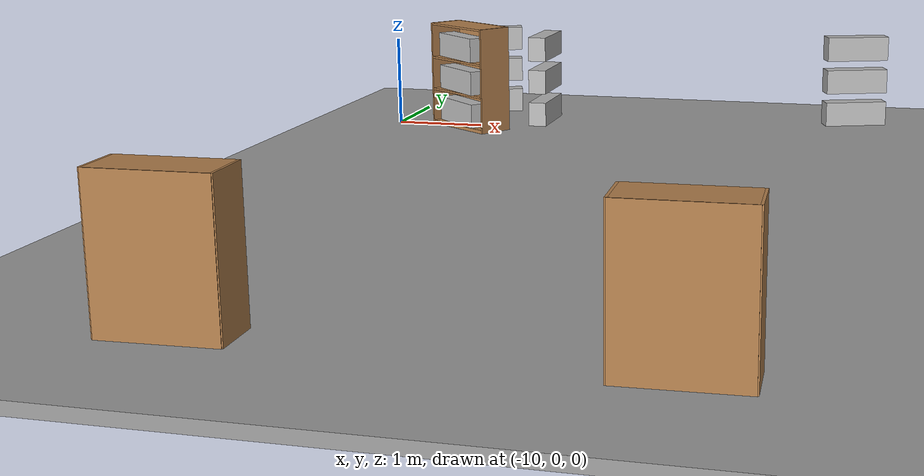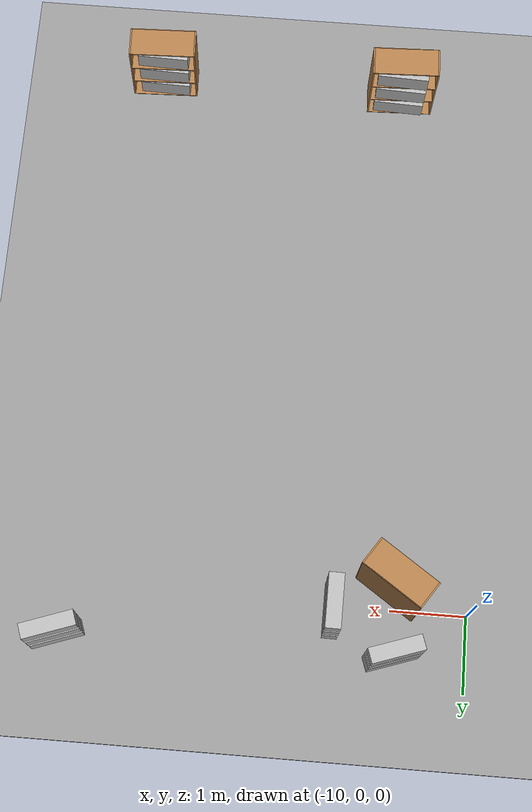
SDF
<sdf version="1.7">
 <world name="default">
  <model name="ground_plane">
   <static>1</static>
   <link name="link">
    <collision name="collision">
     <geometry><plane><normal>0 0 1</normal><size>100 100</size></plane></geometry>
     <surface><friction><ode><mu>100</mu><mu2>50</mu2></ode></friction></surface>
    </collision>
    <visual name="visual">
     <cast_shadows>0</cast_shadows>
     <geometry><plane><normal>0 0 1</normal><size>100 100</size></plane></geometry>
     <material>
      <script><uri>file://media/materials/scripts/gazebo.material</uri><name>Gazebo/Grey</name></script>
     </material>
    </visual>
   </link>
  </model>
  <model name="ground_plane_1">
   <static>1</static>
   <link name="link">
    <collision name="collision">
     <geometry><plane><normal>0 0 1</normal><size>100 100</size></plane></geometry>
     <surface>
      <contact><collide_bitmask>65535</collide_bitmask></contact>
      <friction><ode><mu>100</mu><mu2>50</mu2></ode></friction>
     </surface>
    </collision>
    <visual name="visual">
     <cast_shadows>0</cast_shadows>
     <geometry><plane><normal>0 0 1</normal><size>100 100</size></plane></geometry>
     <material>
      <script><uri>file://media/materials/scripts/gazebo.material</uri><name>Gazebo/Grey</name></script>
     </material>
    </visual>
   </link>
   <pose>-14.0073 -2.16514 0 0 -0 0</pose>
  </model>
  <model name="bookshelf_0_clone_0">
   <static>1</static>
   <link name="link">
    <inertial><mass>1</mass></inertial>
    <collision name="back">
     <pose>0 0.005 0.6 0 -0 0</pose>
     <geometry><box><size>0.9 0.01 1.2</size></box></geometry>
    </collision>
    <visual name="visual1">
     <pose>0 0.005 0.6 0 -0 0</pose>
     <geometry><box><size>0.9 0.01 1.2</size></box></geometry>
     <material>
      <script><uri>file://media/materials/scripts/gazebo.material</uri><name>Gazebo/Wood</name></script>
     </material>
    </visual>
    <collision name="left_side">
     <pose>0.45 -0.195 0.6 0 -0 0</pose>
     <geometry><box><size>0.02 0.4 1.2</size></box></geometry>
    </collision>
    <visual name="visual2">
     <pose>0.45 -0.195 0.6 0 -0 0</pose>
     <geometry><box><size>0.02 0.4 1.2</size></box></geometry>
     <material>
      <script><uri>file://media/materials/scripts/gazebo.material</uri><name>Gazebo/Wood</name></script>
     </material>
    </visual>
    <collision name="right_side">
     <pose>-0.45 -0.195 0.6 0 -0 0</pose>
     <geometry><box><size>0.02 0.4 1.2</size></box></geometry>
    </collision>
    <visual name="visual3">
     <pose>-0.45 -0.195 0.6 0 -0 0</pose>
     <geometry><box><size>0.02 0.4 1.2</size></box></geometry>
     <material>
      <script><uri>file://media/materials/scripts/gazebo.material</uri><name>Gazebo/Wood</name></script>
     </material>
    </visual>
    <collision name="bottom">
     <pose>0 -0.195 0.03 0 -0 0</pose>
     <geometry><box><size>0.88 0.4 0.06</size></box></geometry>
    </collision>
    <visual name="visual4">
     <pose>0 -0.195 0.03 0 -0 0</pose>
     <geometry><box><size>0.88 0.4 0.06</size></box></geometry>
     <material>
      <script><uri>file://media/materials/scripts/gazebo.material</uri><name>Gazebo/Wood</name></script>
     </material>
    </visual>
    <collision name="top">
     <pose>0 -0.195 1.19 0 -0 0</pose>
     <geometry><box><size>0.88 0.4 0.02</size></box></geometry>
    </collision>
    <visual name="visual5">
     <pose>0 -0.195 1.19 0 -0 0</pose>
     <geometry><box><size>0.88 0.4 0.02</size></box></geometry>
     <material>
      <script><uri>file://media/materials/scripts/gazebo.material</uri><name>Gazebo/Wood</name></script>
     </material>
    </visual>
    <collision name="low_shelf">
     <pose>0 -0.195 0.43 0 -0 0</pose>
     <geometry><box><size>0.88 0.4 0.02</size></box></geometry>
    </collision>
    <visual name="visual6">
     <pose>0 -0.195 0.43 0 -0 0</pose>
     <geometry><box><size>0.88 0.4 0.02</size></box></geometry>
     <material>
      <script><uri>file://media/materials/scripts/gazebo.material</uri><name>Gazebo/Wood</name></script>
     </material>
    </visual>
    <collision name="high_shelf">
     <pose>0 -0.195 0.8 0 -0 0</pose>
     <geometry><box><size>0.88 0.4 0.02</size></box></geometry>
    </collision>
    <visual name="visual7">
     <pose>0 -0.195 0.8 0 -0 0</pose>
     <geometry><box><size>0.88 0.4 0.02</size></box></geometry>
     <material>
      <script><uri>file://media/materials/scripts/gazebo.material</uri><name>Gazebo/Wood</name></script>
     </material>
    </visual>
   </link>
   <pose>-8.75541 -7.62626 0 0 0 -3.10983</pose>
  </model>
  <model name="bookshelf_0_clone_0_clone">
   <static>1</static>
   <link name="link">
    <inertial><mass>1</mass></inertial>
    <collision name="back">
     <pose>0 0.005 0.6 0 -0 0</pose>
     <geometry><box><size>0.9 0.01 1.2</size></box></geometry>
    </collision>
    <visual name="visual1">
     <pose>0 0.005 0.6 0 -0 0</pose>
     <geometry><box><size>0.9 0.01 1.2</size></box></geometry>
     <material>
      <script><uri>file://media/materials/scripts/gazebo.material</uri><name>Gazebo/Wood</name></script>
     </material>
    </visual>
    <collision name="left_side">
     <pose>0.45 -0.195 0.6 0 -0 0</pose>
     <geometry><box><size>0.02 0.4 1.2</size></box></geometry>
    </collision>
    <visual name="visual2">
     <pose>0.45 -0.195 0.6 0 -0 0</pose>
     <geometry><box><size>0.02 0.4 1.2</size></box></geometry>
     <material>
      <script><uri>file://media/materials/scripts/gazebo.material</uri><name>Gazebo/Wood</name></script>
     </material>
    </visual>
    <collision name="right_side">
     <pose>-0.45 -0.195 0.6 0 -0 0</pose>
     <geometry><box><size>0.02 0.4 1.2</size></box></geometry>
    </collision>
    <visual name="visual3">
     <pose>-0.45 -0.195 0.6 0 -0 0</pose>
     <geometry><box><size>0.02 0.4 1.2</size></box></geometry>
     <material>
      <script><uri>file://media/materials/scripts/gazebo.material</uri><name>Gazebo/Wood</name></script>
     </material>
    </visual>
    <collision name="bottom">
     <pose>0 -0.195 0.03 0 -0 0</pose>
     <geometry><box><size>0.88 0.4 0.06</size></box></geometry>
    </collision>
    <visual name="visual4">
     <pose>0 -0.195 0.03 0 -0 0</pose>
     <geometry><box><size>0.88 0.4 0.06</size></box></geometry>
     <material>
      <script><uri>file://media/materials/scripts/gazebo.material</uri><name>Gazebo/Wood</name></script>
     </material>
    </visual>
    <collision name="top">
     <pose>0 -0.195 1.19 0 -0 0</pose>
     <geometry><box><size>0.88 0.4 0.02</size></box></geometry>
    </collision>
    <visual name="visual5">
     <pose>0 -0.195 1.19 0 -0 0</pose>
     <geometry><box><size>0.88 0.4 0.02</size></box></geometry>
     <material>
      <script><uri>file://media/materials/scripts/gazebo.material</uri><name>Gazebo/Wood</name></script>
     </material>
    </visual>
    <collision name="low_shelf">
     <pose>0 -0.195 0.43 0 -0 0</pose>
     <geometry><box><size>0.88 0.4 0.02</size></box></geometry>
    </collision>
    <visual name="visual6">
     <pose>0 -0.195 0.43 0 -0 0</pose>
     <geometry><box><size>0.88 0.4 0.02</size></box></geometry>
     <material>
      <script><uri>file://media/materials/scripts/gazebo.material</uri><name>Gazebo/Wood</name></script>
     </material>
    </visual>
    <collision name="high_shelf">
     <pose>0 -0.195 0.8 0 -0 0</pose>
     <geometry><box><size>0.88 0.4 0.02</size></box></geometry>
    </collision>
    <visual name="visual7">
     <pose>0 -0.195 0.8 0 -0 0</pose>
     <geometry><box><size>0.88 0.4 0.02</size></box></geometry>
     <material>
      <script><uri>file://media/materials/scripts/gazebo.material</uri><name>Gazebo/Wood</name></script>
     </material>
    </visual>
   </link>
   <pose>-5.34307 -7.65405 0 0 0 -3.10983</pose>
  </model>
  <model name="bookshelf_clone_clone_clone_1_clone_0_clone_1">
   <static>1</static>
   <link name="link">
    <inertial><mass>1</mass></inertial>
    <collision name="back">
     <pose>0 0.005 0.6 0 -0 0</pose>
     <geometry><box><size>0.9 0.01 1.2</size></box></geometry>
    </collision>
    <visual name="visual1">
     <pose>0 0.005 0.6 0 -0 0</pose>
     <geometry><box><size>0.9 0.01 1.2</size></box></geometry>
     <material>
      <script><uri>file://media/materials/scripts/gazebo.material</uri><name>Gazebo/Wood</name></script>
     </material>
    </visual>
    <collision name="left_side">
     <pose>0.45 -0.195 0.6 0 -0 0</pose>
     <geometry><box><size>0.02 0.4 1.2</size></box></geometry>
    </collision>
    <visual name="visual2">
     <pose>0.45 -0.195 0.6 0 -0 0</pose>
     <geometry><box><size>0.02 0.4 1.2</size></box></geometry>
     <material>
      <script><uri>file://media/materials/scripts/gazebo.material</uri><name>Gazebo/Wood</name></script>
     </material>
    </visual>
    <collision name="right_side">
     <pose>-0.45 -0.195 0.6 0 -0 0</pose>
     <geometry><box><size>0.02 0.4 1.2</size></box></geometry>
    </collision>
    <visual name="visual3">
     <pose>-0.45 -0.195 0.6 0 -0 0</pose>
     <geometry><box><size>0.02 0.4 1.2</size></box></geometry>
     <material>
      <script><uri>file://media/materials/scripts/gazebo.material</uri><name>Gazebo/Wood</name></script>
     </material>
    </visual>
    <collision name="bottom">
     <pose>0 -0.195 0.03 0 -0 0</pose>
     <geometry><box><size>0.88 0.4 0.06</size></box></geometry>
    </collision>
    <visual name="visual4">
     <pose>0 -0.195 0.03 0 -0 0</pose>
     <geometry><box><size>0.88 0.4 0.06</size></box></geometry>
     <material>
      <script><uri>file://media/materials/scripts/gazebo.material</uri><name>Gazebo/Wood</name></script>
     </material>
    </visual>
    <collision name="top">
     <pose>0 -0.195 1.19 0 -0 0</pose>
     <geometry><box><size>0.88 0.4 0.02</size></box></geometry>
    </collision>
    <visual name="visual5">
     <pose>0 -0.195 1.19 0 -0 0</pose>
     <geometry><box><size>0.88 0.4 0.02</size></box></geometry>
     <material>
      <script><uri>file://media/materials/scripts/gazebo.material</uri><name>Gazebo/Wood</name></script>
     </material>
    </visual>
    <collision name="low_shelf">
     <pose>0 -0.195 0.43 0 -0 0</pose>
     <geometry><box><size>0.88 0.4 0.02</size></box></geometry>
    </collision>
    <visual name="visual6">
     <pose>0 -0.195 0.43 0 -0 0</pose>
     <geometry><box><size>0.88 0.4 0.02</size></box></geometry>
     <material>
      <script><uri>file://media/materials/scripts/gazebo.material</uri><name>Gazebo/Wood</name></script>
     </material>
    </visual>
    <collision name="high_shelf">
     <pose>0 -0.195 0.8 0 -0 0</pose>
     <geometry><box><size>0.88 0.4 0.02</size></box></geometry>
    </collision>
    <visual name="visual7">
     <pose>0 -0.195 0.8 0 -0 0</pose>
     <geometry><box><size>0.88 0.4 0.02</size></box></geometry>
     <material>
      <script><uri>file://media/materials/scripts/gazebo.material</uri><name>Gazebo/Wood</name></script>
     </material>
    </visual>
   </link>
   <pose>-8.91093 -0.143227 0.029212 0 0 -0.598378</pose>
  </model>
  <model name="book1.xacro_clone_9">
   <link name="base_footprint">
    <inertial>
     <pose>1 1 1.5 0 -0 0</pose>
     <mass>6</mass>
     <inertia><ixx>0.7503</ixx><ixy>0</ixy><ixz>0</ixz><iyy>0.7503</iyy><iyz>0</iyz><izz>0.003</izz></inertia>
    </inertial>
    <collision name="base_footprint_fixed_joint_lump__base_link_collision">
     <pose>1 1 1 0 -0 0</pose>
     <geometry><box><size>0.7 0.2 0.27</size></box></geometry>
    </collision>
    <collision name="base_footprint_fixed_joint_lump__book_link_2_collision_1">
     <pose>1 1 1.375 0 -0 0</pose>
     <geometry><box><size>0.7 0.2 0.27</size></box></geometry>
    </collision>
    <collision name="base_footprint_fixed_joint_lump__book_link_3_collision_2">
     <pose>1 1 1.75 0 -0 0</pose>
     <geometry><box><size>0.7 0.2 0.27</size></box></geometry>
    </collision>
    <visual name="base_footprint_fixed_joint_lump__base_link_visual">
     <pose>1 1 1 0 -0 0</pose>
     <geometry><box><size>0.7 0.2 0.27</size></box></geometry>
    </visual>
    <visual name="base_footprint_fixed_joint_lump__book_link_2_visual_1">
     <pose>1 1 1.375 0 -0 0</pose>
     <geometry><box><size>0.7 0.2 0.27</size></box></geometry>
    </visual>
    <visual name="base_footprint_fixed_joint_lump__book_link_3_visual_2">
     <pose>1 1 1.75 0 -0 0</pose>
     <geometry><box><size>0.7 0.2 0.27</size></box></geometry>
    </visual>
   </link>
   <frame name="book_joint_2" attached_to="base_link"><pose>0 0 0.375 0 -0 0</pose></frame>
   <frame name="book_link_2" attached_to="book_joint_2"/>
   <frame name="book_joint_3" attached_to="base_link"><pose>0 0 0.75 0 -0 0</pose></frame>
   <frame name="book_link_3" attached_to="book_joint_3"/>
   <frame name="base_joint" attached_to="base_footprint"><pose>1 1 1 0 -0 0</pose></frame>
   <frame name="base_link" attached_to="base_joint"/>
   <pose>-9.7861 -8.28662 -0.800018 0 -1.4e-05 -0.042703</pose>
  </model>
  <model name="book1.xacro_clone_10">
   <link name="base_footprint">
    <inertial>
     <pose>1 1 1.5 0 -0 0</pose>
     <mass>6</mass>
     <inertia><ixx>0.7503</ixx><ixy>0</ixy><ixz>0</ixz><iyy>0.7503</iyy><iyz>0</iyz><izz>0.003</izz></inertia>
    </inertial>
    <collision name="base_footprint_fixed_joint_lump__base_link_collision">
     <pose>1 1 1 0 -0 0</pose>
     <geometry><box><size>0.7 0.2 0.27</size></box></geometry>
    </collision>
    <collision name="base_footprint_fixed_joint_lump__book_link_2_collision_1">
     <pose>1 1 1.375 0 -0 0</pose>
     <geometry><box><size>0.7 0.2 0.27</size></box></geometry>
    </collision>
    <collision name="base_footprint_fixed_joint_lump__book_link_3_collision_2">
     <pose>1 1 1.75 0 -0 0</pose>
     <geometry><box><size>0.7 0.2 0.27</size></box></geometry>
    </collision>
    <visual name="base_footprint_fixed_joint_lump__base_link_visual">
     <pose>1 1 1 0 -0 0</pose>
     <geometry><box><size>0.7 0.2 0.27</size></box></geometry>
    </visual>
    <visual name="base_footprint_fixed_joint_lump__book_link_2_visual_1">
     <pose>1 1 1.375 0 -0 0</pose>
     <geometry><box><size>0.7 0.2 0.27</size></box></geometry>
    </visual>
    <visual name="base_footprint_fixed_joint_lump__book_link_3_visual_2">
     <pose>1 1 1.75 0 -0 0</pose>
     <geometry><box><size>0.7 0.2 0.27</size></box></geometry>
    </visual>
   </link>
   <frame name="book_joint_2" attached_to="base_link"><pose>0 0 0.375 0 -0 0</pose></frame>
   <frame name="book_link_2" attached_to="book_joint_2"/>
   <frame name="book_joint_3" attached_to="base_link"><pose>0 0 0.75 0 -0 0</pose></frame>
   <frame name="book_link_3" attached_to="book_joint_3"/>
   <frame name="base_joint" attached_to="base_footprint"><pose>1 1 1 0 -0 0</pose></frame>
   <frame name="base_link" attached_to="base_joint"/>
   <pose>-6.39323 -8.3502 -0.8 0 0 -0.030439</pose>
  </model>
  <model name="book1.xacro_clone_16_clone_clone_0">
   <link name="base_footprint">
    <inertial>
     <pose>1 1 1.5 0 -0 0</pose>
     <mass>6</mass>
     <inertia><ixx>0.7503</ixx><ixy>0</ixy><ixz>0</ixz><iyy>0.7503</iyy><iyz>0</iyz><izz>0.003</izz></inertia>
    </inertial>
    <collision name="base_footprint_fixed_joint_lump__base_link_collision">
     <pose>1 1 1 0 -0 0</pose>
     <geometry><box><size>0.7 0.2 0.27</size></box></geometry>
    </collision>
    <collision name="base_footprint_fixed_joint_lump__book_link_2_collision_1">
     <pose>1 1 1.375 0 -0 0</pose>
     <geometry><box><size>0.7 0.2 0.27</size></box></geometry>
    </collision>
    <collision name="base_footprint_fixed_joint_lump__book_link_3_collision_2">
     <pose>1 1 1.75 0 -0 0</pose>
     <geometry><box><size>0.7 0.2 0.27</size></box></geometry>
    </collision>
    <visual name="base_footprint_fixed_joint_lump__base_link_visual">
     <pose>1 1 1 0 -0 0</pose>
     <geometry><box><size>0.7 0.2 0.27</size></box></geometry>
    </visual>
    <visual name="base_footprint_fixed_joint_lump__book_link_2_visual_1">
     <pose>1 1 1.375 0 -0 0</pose>
     <geometry><box><size>0.7 0.2 0.27</size></box></geometry>
    </visual>
    <visual name="base_footprint_fixed_joint_lump__book_link_3_visual_2">
     <pose>1 1 1.75 0 -0 0</pose>
     <geometry><box><size>0.7 0.2 0.27</size></box></geometry>
    </visual>
   </link>
   <frame name="book_joint_2" attached_to="base_link"><pose>0 0 0.375 0 -0 0</pose></frame>
   <frame name="book_link_2" attached_to="book_joint_2"/>
   <frame name="book_joint_3" attached_to="base_link"><pose>0 0 0.75 0 -0 0</pose></frame>
   <frame name="book_link_3" attached_to="book_joint_3"/>
   <frame name="base_joint" attached_to="base_footprint"><pose>1 1 1 0 -0 0</pose></frame>
   <frame name="base_link" attached_to="base_joint"/>
   <pose>-7.24425 -0.935626 -0.787367 0 1.3e-05 1.55574</pose>
  </model>
  <model name="book1.xacro_clone_16_clone_clone_1">
   <link name="base_footprint">
    <inertial>
     <pose>1 1 1.5 0 -0 0</pose>
     <mass>6</mass>
     <inertia><ixx>0.7503</ixx><ixy>0</ixy><ixz>0</ixz><iyy>0.7503</iyy><iyz>0</iyz><izz>0.003</izz></inertia>
    </inertial>
    <collision name="base_footprint_fixed_joint_lump__base_link_collision">
     <pose>1 1 1 0 -0 0</pose>
     <geometry><box><size>0.7 0.2 0.27</size></box></geometry>
    </collision>
    <collision name="base_footprint_fixed_joint_lump__book_link_2_collision_1">
     <pose>1 1 1.375 0 -0 0</pose>
     <geometry><box><size>0.7 0.2 0.27</size></box></geometry>
    </collision>
    <collision name="base_footprint_fixed_joint_lump__book_link_3_collision_2">
     <pose>1 1 1.75 0 -0 0</pose>
     <geometry><box><size>0.7 0.2 0.27</size></box></geometry>
    </collision>
    <visual name="base_footprint_fixed_joint_lump__base_link_visual">
     <pose>1 1 1 0 -0 0</pose>
     <geometry><box><size>0.7 0.2 0.27</size></box></geometry>
    </visual>
    <visual name="base_footprint_fixed_joint_lump__book_link_2_visual_1">
     <pose>1 1 1.375 0 -0 0</pose>
     <geometry><box><size>0.7 0.2 0.27</size></box></geometry>
    </visual>
    <visual name="base_footprint_fixed_joint_lump__book_link_3_visual_2">
     <pose>1 1 1.75 0 -0 0</pose>
     <geometry><box><size>0.7 0.2 0.27</size></box></geometry>
    </visual>
   </link>
   <frame name="book_joint_2" attached_to="base_link"><pose>0 0 0.375 0 -0 0</pose></frame>
   <frame name="book_link_2" attached_to="book_joint_2"/>
   <frame name="book_joint_3" attached_to="base_link"><pose>0 0 0.75 0 -0 0</pose></frame>
   <frame name="book_link_3" attached_to="book_joint_3"/>
   <frame name="base_joint" attached_to="base_footprint"><pose>1 1 1 0 -0 0</pose></frame>
   <frame name="base_link" attached_to="base_joint"/>
   <pose>-7.68489 -0.265231 -0.770807 -2e-06 -1.5e-05 2.41094</pose>
  </model>
  <model name="book1.xacro_clone_0_clone_3_clone">
   <link name="base_footprint">
    <inertial>
     <pose>1 1 1.5 0 -0 0</pose>
     <mass>6</mass>
     <inertia><ixx>0.7503</ixx><ixy>0</ixy><ixz>0</ixz><iyy>0.7503</iyy><iyz>0</iyz><izz>0.003</izz></inertia>
    </inertial>
    <collision name="base_footprint_fixed_joint_lump__base_link_collision">
     <pose>1 1 1 0 -0 0</pose>
     <geometry><box><size>0.7 0.2 0.27</size></box></geometry>
    </collision>
    <collision name="base_footprint_fixed_joint_lump__book_link_2_collision_1">
     <pose>1 1 1.375 0 -0 0</pose>
     <geometry><box><size>0.7 0.2 0.27</size></box></geometry>
    </collision>
    <collision name="base_footprint_fixed_joint_lump__book_link_3_collision_2">
     <pose>1 1 1.75 0 -0 0</pose>
     <geometry><box><size>0.7 0.2 0.27</size></box></geometry>
    </collision>
    <visual name="base_footprint_fixed_joint_lump__base_link_visual">
     <pose>1 1 1 0 -0 0</pose>
     <geometry><box><size>0.7 0.2 0.27</size></box></geometry>
    </visual>
    <visual name="base_footprint_fixed_joint_lump__book_link_2_visual_1">
     <pose>1 1 1.375 0 -0 0</pose>
     <geometry><box><size>0.7 0.2 0.27</size></box></geometry>
    </visual>
    <visual name="base_footprint_fixed_joint_lump__book_link_3_visual_2">
     <pose>1 1 1.75 0 -0 0</pose>
     <geometry><box><size>0.7 0.2 0.27</size></box></geometry>
    </visual>
   </link>
   <frame name="book_joint_2" attached_to="base_link"><pose>0 0 0.375 0 -0 0</pose></frame>
   <frame name="book_link_2" attached_to="book_joint_2"/>
   <frame name="book_joint_3" attached_to="base_link"><pose>0 0 0.75 0 -0 0</pose></frame>
   <frame name="book_link_3" attached_to="book_joint_3"/>
   <frame name="base_joint" attached_to="base_footprint"><pose>1 1 1 0 -0 0</pose></frame>
   <frame name="base_link" attached_to="base_joint"/>
   <pose>-5.31119 -0.61849 -0.787392 0 -1.2e-05 0.338685</pose>
  </model>
  <model name="book1.xacro_clone_0_clone_3_clone_0">
   <link name="base_footprint">
    <inertial>
     <pose>1 1 1.5 0 -0 0</pose>
     <mass>6</mass>
     <inertia><ixx>0.7503</ixx><ixy>0</ixy><ixz>0</ixz><iyy>0.7503</iyy><iyz>0</iyz><izz>0.003</izz></inertia>
    </inertial>
    <collision name="base_footprint_fixed_joint_lump__base_link_collision">
     <pose>1 1 1 0 -0 0</pose>
     <geometry><box><size>0.7 0.2 0.27</size></box></geometry>
    </collision>
    <collision name="base_footprint_fixed_joint_lump__book_link_2_collision_1">
     <pose>1 1 1.375 0 -0 0</pose>
     <geometry><box><size>0.7 0.2 0.27</size></box></geometry>
    </collision>
    <collision name="base_footprint_fixed_joint_lump__book_link_3_collision_2">
     <pose>1 1 1.75 0 -0 0</pose>
     <geometry><box><size>0.7 0.2 0.27</size></box></geometry>
    </collision>
    <visual name="base_footprint_fixed_joint_lump__base_link_visual">
     <pose>1 1 1 0 -0 0</pose>
     <geometry><box><size>0.7 0.2 0.27</size></box></geometry>
    </visual>
    <visual name="base_footprint_fixed_joint_lump__book_link_2_visual_1">
     <pose>1 1 1.375 0 -0 0</pose>
     <geometry><box><size>0.7 0.2 0.27</size></box></geometry>
    </visual>
    <visual name="base_footprint_fixed_joint_lump__book_link_3_visual_2">
     <pose>1 1 1.75 0 -0 0</pose>
     <geometry><box><size>0.7 0.2 0.27</size></box></geometry>
    </visual>
   </link>
   <frame name="book_joint_2" attached_to="base_link"><pose>0 0 0.375 0 -0 0</pose></frame>
   <frame name="book_link_2" attached_to="book_joint_2"/>
   <frame name="book_joint_3" attached_to="base_link"><pose>0 0 0.75 0 -0 0</pose></frame>
   <frame name="book_link_3" attached_to="book_joint_3"/>
   <frame name="base_joint" attached_to="base_footprint"><pose>1 1 1 0 -0 0</pose></frame>
   <frame name="base_link" attached_to="base_joint"/>
   <pose>-9.65295 -0.655367 -0.787395 1e-06 -1.4e-05 0.327091</pose>
  </model>
 </world>
</sdf>
